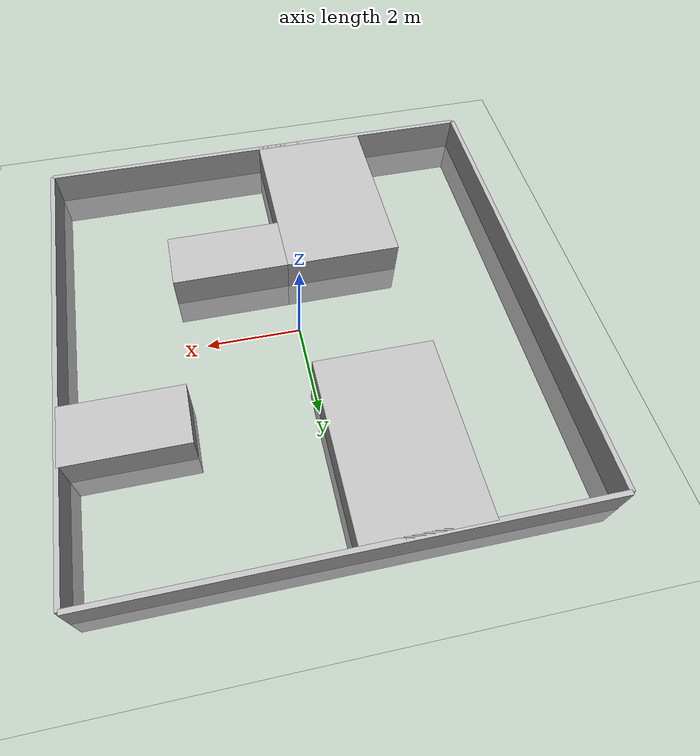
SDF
<?xml version="1.0" ?>
<sdf version="1.5">
  <world name="default">
    <include>
      <uri>model://ground_plane</uri>
    </include>
    <include>
      <uri>model://sun</uri>
    </include>
    <include>
      <uri>model://utokyo_walls02</uri>
      <uri></uri>
    </include>
  </world>
</sdf>

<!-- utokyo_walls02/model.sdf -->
<sdf version="1.4">
  <model name="utokyo_walls02">
    <static>true</static>

    <link name="wall">

      <collision name="wall01-entrance">
        <pose>0 5 0 0 0 0</pose>
        <geometry>
          <box>
            <size>10 .1 1.5</size>
          </box>
        </geometry>
      </collision>
      <visual name="wall01-entrance">
        <pose>0 5 0 0 0 0</pose>
        <geometry>
          <box>
            <size>10 .1 1.5</size>
          </box>
        </geometry>
      </visual>

      <collision name="wall02">
        <pose>5 0 0 0 0 1.570796</pose>
        <geometry>
          <box>
            <size>10 .1 1.5</size>
          </box>
        </geometry>
      </collision>
      <visual name="wall02">
        <pose>5 0 0 0 0 1.570796</pose>
        <geometry>
          <box>
            <size>10 .1 1.5</size>
          </box>
        </geometry>
      </visual>

      <collision name="wall03">
        <pose>0 -5 0 0 0 0</pose>
        <geometry>
          <box>
            <size>10 .1 1.5</size>
          </box>
        </geometry>
      </collision>
      <visual name="wall03">
        <pose>0 -5 0 0 0 0</pose>
        <geometry>
          <box>
            <size>10 .1 1.5</size>
          </box>
        </geometry>
      </visual>

      <collision name="wall04">
        <pose>-5 0 0 0 0 1.570796</pose>
        <geometry>
          <box>
            <size>10 .1 1.5</size>
          </box>
        </geometry>
      </collision>
      <visual name="wall04">
        <pose>-5 0 0 0 0 1.570796</pose>
        <geometry>
          <box>
            <size>10 .1 1.5</size>
          </box>
        </geometry>
      </visual>

    </link>

    <link name="block">

      <collision name="block01">
        <pose>-1.25 3.125 0 0 0 0</pose>
        <geometry>
          <box>
            <size>2.5 3.75 1.5</size>
          </box>
        </geometry>
      </collision>
      <visual name="block01">
        <pose>-1.25 3.125 0 0 0 0</pose>
        <geometry>
          <box>
            <size>2.5 3.75 1.5</size>
          </box>
        </geometry>
      </visual>

      <collision name="block02">
        <pose>3.75 1.875 0 0 0 0</pose>
        <geometry>
          <box>
            <size>2.5 1.25 1.5</size>
          </box>
        </geometry>
      </collision>
      <visual name="block02">
        <pose>3.75 1.875 0 0 0 0</pose>
        <geometry>
          <box>
            <size>2.5 1.25 1.5</size>
          </box>
        </geometry>
      </visual>

      <collision name="block03">
        <pose>1.25 -1.875 0 0 0 0</pose>
        <geometry>
          <box>
            <size>2.5 1.25 1.5</size>
          </box>
        </geometry>
      </collision>
      <visual name="block03">
        <pose>1.25 -1.875 0 0 0 0</pose>
        <geometry>
          <box>
            <size>2.5 1.25 1.5</size>
          </box>
        </geometry>
      </visual>

      <collision name="block04">
        <pose>-1.25 -3.125 0 0 0 0</pose>
        <geometry>
          <box>
            <size>2.5 3.75 1.5</size>
          </box>
        </geometry>
      </collision>
      <visual name="block04">
        <pose>-1.25 -3.125 0 0 0 0</pose>
        <geometry>
          <box>
            <size>2.5 3.75 1.5</size>
          </box>
        </geometry>
      </visual>

    </link>

  </model>
</sdf>
